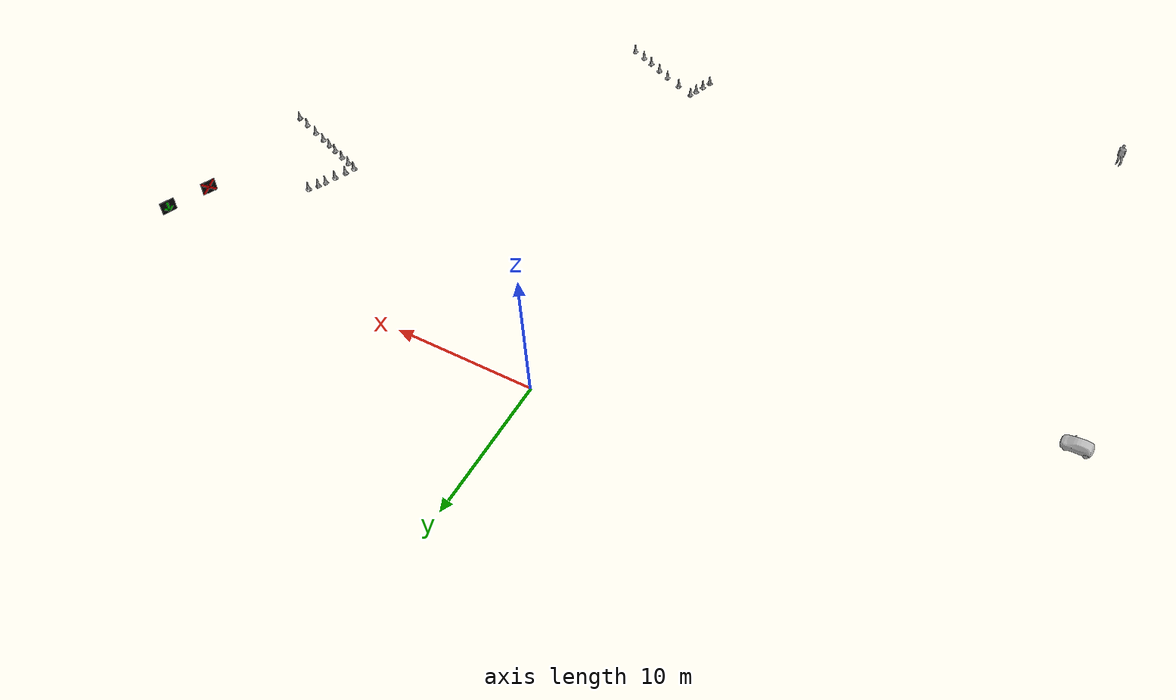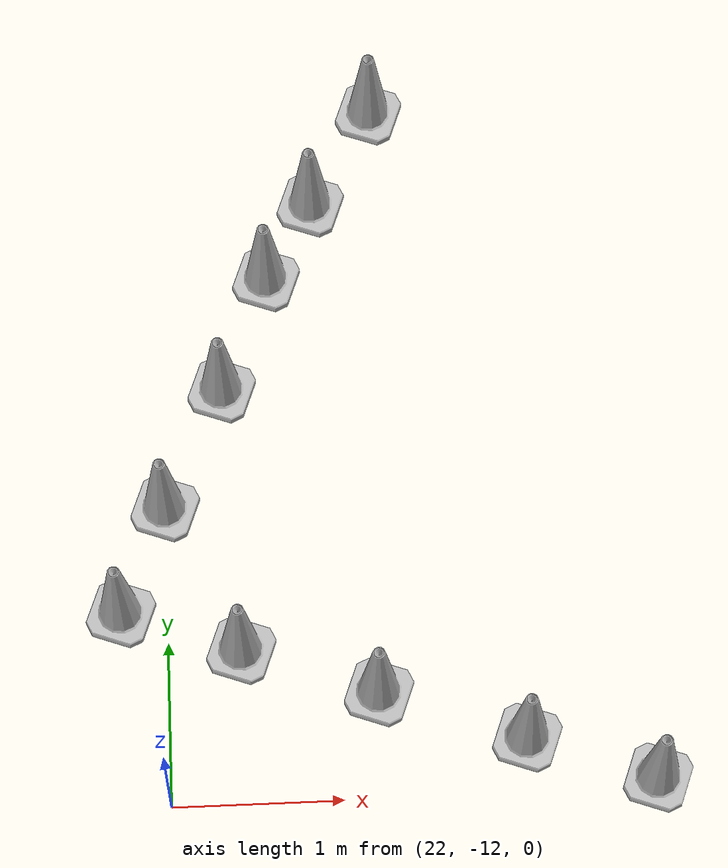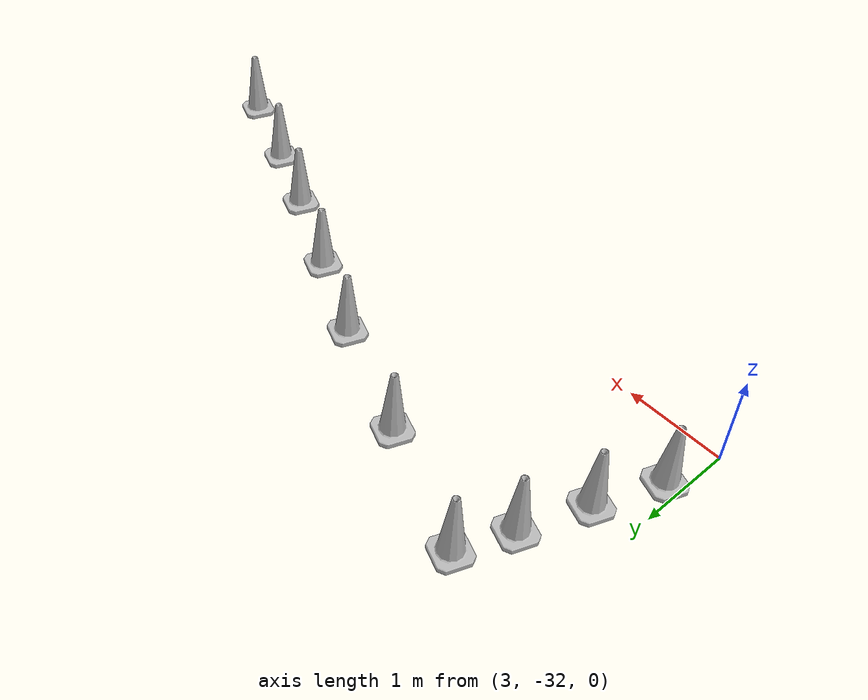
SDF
<sdf version="1.8">
 <world name="course_world">
  <physics name="4ms" type="ignored">
   <max_step_size>0.004</max_step_size>
   <real_time_factor>1.0</real_time_factor>
  </physics>
  <plugin filename="ignition-gazebo-physics-system" name="ignition::gazebo::systems::Physics"/>
  <plugin filename="ignition-gazebo-user-commands-system" name="ignition::gazebo::systems::UserCommands"/>
  <plugin filename="ignition-gazebo-scene-broadcaster-system" name="ignition::gazebo::systems::SceneBroadcaster"/>
  <scene><ambient>0.6 0.6 0.6 1</ambient><background>0.7 0.8 0.9 1</background></scene>
  <light type="directional" name="sun">
   <pose>-12.1547 -6.0617 50.0000 0 0 1.21898</pose>
   <diffuse>1 1 1 1</diffuse>
   <specular>0.4 0.4 0.4 1</specular>
   <direction>-0.3 0.2 -0.9</direction>
  </light>
  <include>
   <uri>model://construction_cone</uri>
   <name>construction_cone_1</name>
   <pose>3.14744 -31.4026 0.0000 0.0 0.0 1.21898</pose>
  </include>
  <include>
   <uri>model://construction_cone</uri>
   <name>construction_cone_3</name>
   <pose>3.40171 -30.7263 0.0000 0.0 0.0 1.21898</pose>
  </include>
  <include>
   <uri>model://construction_cone</uri>
   <name>construction_cone_5</name>
   <pose>3.6377 -30.0433 0.0000 0.0 0.0 1.21898</pose>
  </include>
  <include>
   <uri>model://construction_cone</uri>
   <name>construction_cone_15</name>
   <pose>3.84746 -29.4912 0.0000 0.0 0.0 1.21898</pose>
  </include>
  <include>
   <uri>model://construction_cone</uri>
   <name>construction_cone_14_8</name>
   <pose>5.11484 -29.9784 0.0000 0.0 0.0 1.21898</pose>
  </include>
  <include>
   <uri>model://construction_cone</uri>
   <name>construction_cone_14_9</name>
   <pose>6.34077 -30.4678 0.0000 0.0 0.0 1.21898</pose>
  </include>
  <include>
   <uri>model://construction_cone</uri>
   <name>construction_cone_14_10</name>
   <pose>7.27722 -30.9084 0.0000 0.0 0.0 1.21898</pose>
  </include>
  <include>
   <uri>model://construction_cone</uri>
   <name>construction_cone_14_11</name>
   <pose>8.24872 -31.3683 0.0000 0.0 0.0 1.21898</pose>
  </include>
  <include>
   <uri>model://construction_cone</uri>
   <name>construction_cone_14_12</name>
   <pose>9.08477 -31.7271 0.0000 0.0 0.0 1.21898</pose>
  </include>
  <include>
   <uri>model://construction_cone</uri>
   <name>construction_cone_14_13</name>
   <pose>10.0839 -32.1222 0.0000 0.0 0.0 1.21898</pose>
  </include>
  <include>
   <uri>model://construction_cone</uri>
   <name>construction_cone_6</name>
   <pose>28.6561 -13.3555 0.0000 0.0 0.0 1.21898</pose>
  </include>
  <include>
   <uri>model://construction_cone</uri>
   <name>construction_cone_7</name>
   <pose>27.6801 -12.9973 0.0000 0.0 0.0 1.21898</pose>
  </include>
  <include>
   <uri>model://construction_cone</uri>
   <name>construction_cone_8</name>
   <pose>26.5595 -12.5859 0.0000 0.0 0.0 1.21898</pose>
  </include>
  <include>
   <uri>model://construction_cone</uri>
   <name>construction_cone_10</name>
   <pose>25.596 -12.2322 0.0000 0.0 0.0 1.21898</pose>
  </include>
  <include>
   <uri>model://construction_cone</uri>
   <name>construction_cone_9</name>
   <pose>24.8166 -11.946 0.0000 0.0 0.0 1.21898</pose>
  </include>
  <include>
   <uri>model://construction_cone</uri>
   <name>construction_cone_11</name>
   <pose>24.0727 -11.673 0.0000 0.0 0.0 1.21898</pose>
  </include>
  <include>
   <uri>model://construction_cone</uri>
   <name>construction_cone_12</name>
   <pose>23.2225 -11.361 0.0000 0.0 0.0 1.21898</pose>
  </include>
  <include>
   <uri>model://construction_cone</uri>
   <name>construction_cone_13</name>
   <pose>22.4264 -11.0686 0.0000 0.0 0.0 1.21898</pose>
  </include>
  <include>
   <uri>model://construction_cone</uri>
   <name>construction_cone_14</name>
   <pose>21.7254 -10.8113 0.0000 0.0 0.0 1.21879</pose>
  </include>
  <include>
   <uri>model://construction_cone</uri>
   <name>construction_cone_14_3</name>
   <pose>21.9998 -10.1605 0.0000 0.0 0.0 1.21898</pose>
  </include>
  <include>
   <uri>model://construction_cone</uri>
   <name>construction_cone_14_4</name>
   <pose>22.3572 -9.41375 0.0000 0.0 0.0 1.21898</pose>
  </include>
  <include>
   <uri>model://construction_cone</uri>
   <name>construction_cone_14_5</name>
   <pose>22.6476 -8.69559 0.0000 0.0 0.0 1.21898</pose>
  </include>
  <include>
   <uri>model://construction_cone</uri>
   <name>construction_cone_14_6</name>
   <pose>22.9349 -8.20786 0.0000 0.0 0.0 1.21898</pose>
  </include>
  <include>
   <uri>model://construction_cone</uri>
   <name>construction_cone_14_7</name>
   <pose>23.3163 -7.59682 0.0000 0.0 0.0 1.21898</pose>
  </include>
  <include>
   <uri>model://person_standing</uri>
   <name>accel_pedestrian</name>
   <static>true</static>
   <pose>-27.1974 -37.2906 0.0000 0.0 0.0 2.78978</pose>
  </include>
  <include>
   <uri>model://hatchback</uri>
   <name>accel_car_1</name>
   <pose>-31.5019 -11.5115 0.0000 0.0 0.0 -0.0063</pose>
  </include>
  <include>
   <uri>model://lane_sign_arrow</uri>
   <name>lane_sign_arrow_1</name>
   <pose>28.0909 0.3732 3.2269 0 0 2.74008</pose>
  </include>
  <include>
   <uri>model://lane_sign_x</uri>
   <name>lane_sign_x_1</name>
   <pose>26.9800 -2.3833 3.1832 0 0 2.74008</pose>
  </include>
  <spherical_coordinates>
   <surface_model>EARTH_WGS84</surface_model>
   <world_frame_orientation>ENU</world_frame_orientation>
   <latitude_deg>37.2887947</latitude_deg>
   <longitude_deg>127.1072418</longitude_deg>
   <elevation>0</elevation>
   <heading_deg>0</heading_deg>
  </spherical_coordinates>
 </world>
</sdf>

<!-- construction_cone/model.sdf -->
<sdf version="1.5">
  <model name="Construction Cone">
    <link name="link">
      <collision name="collision">
        <geometry>
          <mesh>
            <scale>7 7 7</scale>
            <uri>model://construction_cone/meshes/construction_cone.dae</uri>
          </mesh>
        </geometry>
      </collision>
      <visual name="visual">
        <geometry>
          <mesh>
            <scale>7 7 7</scale>
            <uri>model://construction_cone/meshes/construction_cone.dae</uri>
          </mesh>
        </geometry>
      </visual>
    </link>
  </model>
</sdf>

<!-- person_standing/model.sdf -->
<sdf version="1.5">
  <model name="person_standing">
    <link name="link">
      <inertial>
        <pose>0 -0.1 0.95 0 0 0</pose>
        <mass>80.0</mass>
        <inertia>
          <ixx>24.88</ixx>
          <ixy>0</ixy>
          <ixz>0</ixz>
          <iyy>25.73</iyy>
          <iyz>0</iyz>
          <izz>2.48</izz>
        </inertia>
      </inertial>

      <collision name="bottom">
        <pose>0 -0.1 0.01 0 0 0</pose>
        <geometry>
          <box>
            <size>0.5 0.35 0.02</size>
          </box>
        </geometry>
      </collision>

      <collision name="person">
        <pose>-0.0053 -0.1086 0.9687 0.04 0 0</pose>
        <geometry>
          <box>
            <size>0.5442 0.3621 1.9171</size>
          </box>
        </geometry>
      </collision>

      <visual name="visual">
        <pose>0 0 0.02 0.04 0 0</pose>
        <geometry>
          <mesh>
            <uri>model://person_standing/meshes/standing.dae</uri>
          </mesh>
        </geometry>
      </visual>
    </link>
  </model>
</sdf>

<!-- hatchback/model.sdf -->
<sdf version="1.6">
  <model name="hatchback">
    <static>true</static>
    <link name="link">
      <collision name="collision">
        <pose>0.1718 0.0 0.3863 0 0 1.57079632679</pose>
        <geometry>
          <box>
            <size>1.0702 2.0006 0.7839</size>
          </box>
        </geometry>
      </collision>
      <visual name="visual">
        <pose>0 0 0 0 0 1.57079632679</pose>
        <geometry>
          <mesh>
            <scale>0.0127 0.0127 0.0127</scale>
            <uri>model://hatchback/meshes/hatchback.obj</uri>
          </mesh>
        </geometry>
      </visual>
    </link>
  </model>
</sdf>

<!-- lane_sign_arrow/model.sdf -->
<sdf version="1.7">
  <model name="lane_sign_arrow">
    <static>true</static>

    <link name="panel">
      <gravity>false</gravity>

      <!-- 1 x 1 m black background square, 5 cm thick. -->
      <visual name="background">
        <pose>0 0 0 0 0 0</pose>
        <geometry>
          <box>
            <size>0.05 1.0 1.0</size>
          </box>
        </geometry>
        <material>
          <ambient>0.02 0.02 0.02 1</ambient>
          <diffuse>0.02 0.02 0.02 1</diffuse>
          <specular>0.05 0.05 0.05 1</specular>
        </material>
      </visual>

      <!-- Green downward arrow, built from three bars standing proud of the panel. -->
      <visual name="arrow_shaft">
        <pose>0.03 0 0.08 0 0 0</pose>
        <geometry>
          <box>
            <size>0.02 0.16 0.62</size>
          </box>
        </geometry>
        <material>
          <ambient>0 0.1 0 1</ambient>
          <diffuse>0 0.8 0 1</diffuse>
          <specular>0 0 0 1</specular>
          <emissive>0 0.9 0 1</emissive>
        </material>
      </visual>

      <visual name="arrow_head_left">
        <pose>0.03 -0.14 -0.21 0.7854 0 0</pose>
        <geometry>
          <box>
            <size>0.02 0.16 0.42</size>
          </box>
        </geometry>
        <material>
          <ambient>0 0.1 0 1</ambient>
          <diffuse>0 0.8 0 1</diffuse>
          <specular>0 0 0 1</specular>
          <emissive>0 0.9 0 1</emissive>
        </material>
      </visual>

      <visual name="arrow_head_right">
        <pose>0.03 0.14 -0.21 -0.7854 0 0</pose>
        <geometry>
          <box>
            <size>0.02 0.16 0.42</size>
          </box>
        </geometry>
        <material>
          <ambient>0 0.1 0 1</ambient>
          <diffuse>0 0.8 0 1</diffuse>
          <specular>0 0 0 1</specular>
          <emissive>0 0.9 0 1</emissive>
        </material>
      </visual>
    </link>
  </model>
</sdf>

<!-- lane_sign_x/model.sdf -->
<sdf version="1.7">
  <model name="lane_sign_x">
    <static>true</static>

    <link name="panel">
      <gravity>false</gravity>

      <!-- 1 x 1 m black background square, 5 cm thick. -->
      <visual name="background">
        <pose>0 0 0 0 0 0</pose>
        <geometry>
          <box>
            <size>0.05 1.0 1.0</size>
          </box>
        </geometry>
        <material>
          <ambient>0.02 0.02 0.02 1</ambient>
          <diffuse>0.02 0.02 0.02 1</diffuse>
          <specular>0.05 0.05 0.05 1</specular>
        </material>
      </visual>

      <!-- Red X, built from two crossed diagonal bars standing proud of the panel. -->
      <visual name="stroke_a">
        <pose>0.03 0 0 0.7854 0 0</pose>
        <geometry>
          <box>
            <size>0.02 0.18 1.28</size>
          </box>
        </geometry>
        <material>
          <ambient>0.1 0 0 1</ambient>
          <diffuse>0.9 0 0 1</diffuse>
          <specular>0 0 0 1</specular>
          <emissive>0.9 0 0 1</emissive>
        </material>
      </visual>

      <visual name="stroke_b">
        <pose>0.03 0 0 -0.7854 0 0</pose>
        <geometry>
          <box>
            <size>0.02 0.18 1.28</size>
          </box>
        </geometry>
        <material>
          <ambient>0.1 0 0 1</ambient>
          <diffuse>0.9 0 0 1</diffuse>
          <specular>0 0 0 1</specular>
          <emissive>0.9 0 0 1</emissive>
        </material>
      </visual>
    </link>
  </model>
</sdf>
